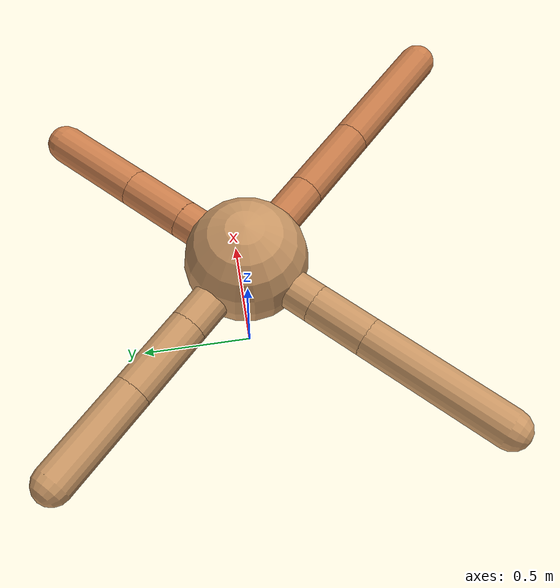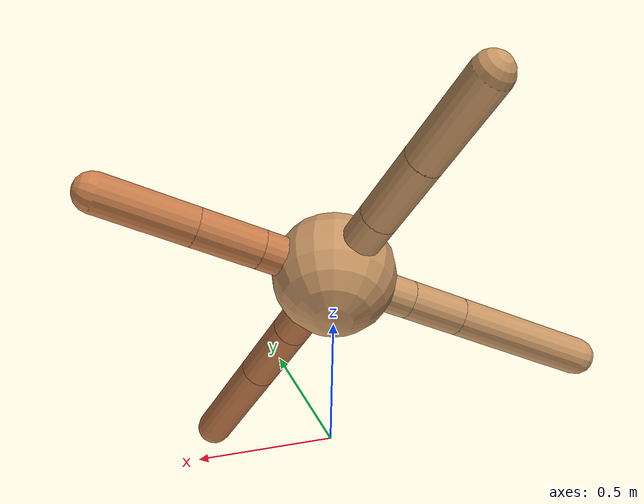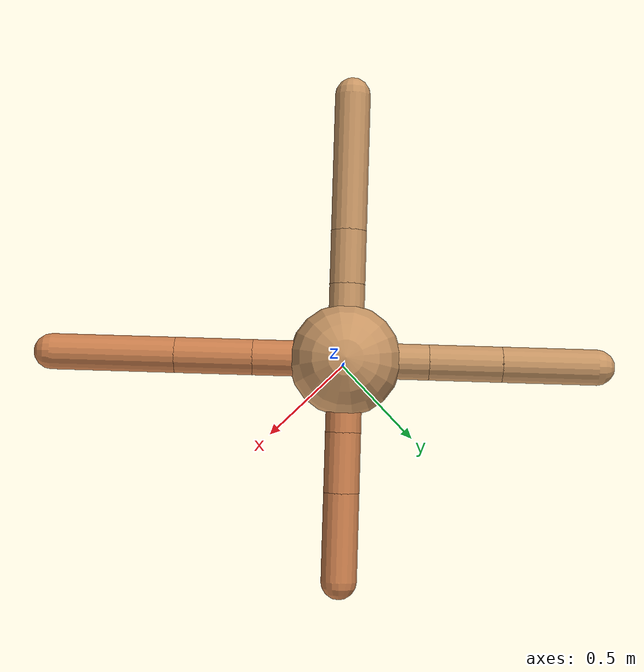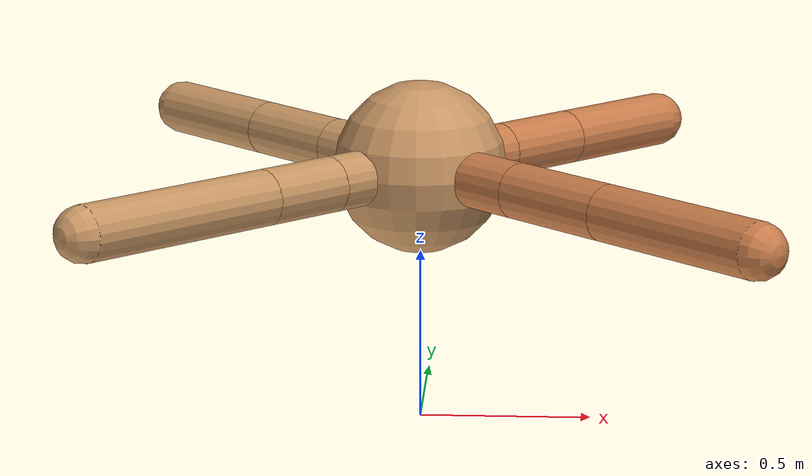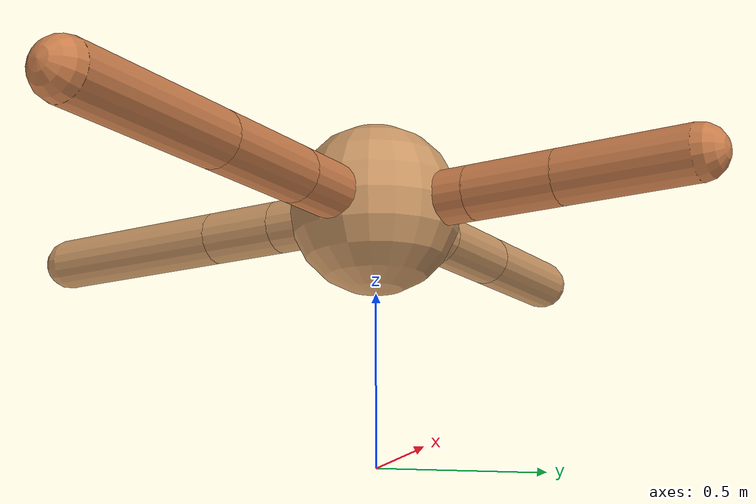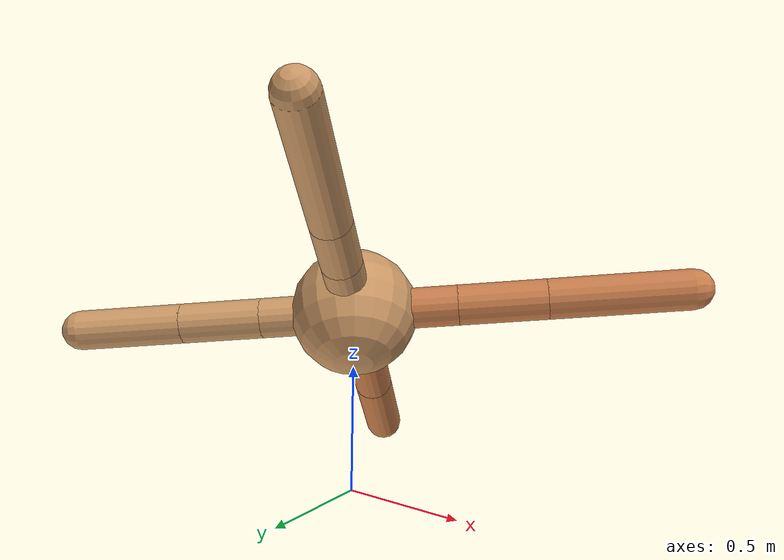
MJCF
<mujoco model="ant">
  <compiler angle="degree" coordinate="local" inertiafromgeom="true" />
  <option integrator="RK4" timestep="0.01" />
  <custom>
    <numeric data="0.0 0.0 0.55 1.0 0.0 0.0 0.0 0.0 1.0 0.0 -1.0 0.0 -1.0 0.0 1.0" name="init_qpos" />
  </custom>
  <default>
    <joint armature="1" damping="1" limited="true" />
    <geom conaffinity="0" condim="3" density="5.0" friction="1.5 0.1 0.1" margin="0.01" rgba="0.8 0.6 0.4 1" />
  </default>
  <worldbody>
    <body name="torso" pos="0 0 0.75">
      <geom name="torso_geom" pos="0 0 0" size="0.25" type="sphere" />

      <body name="front_left_leg" pos="0 0 0">
        <geom fromto="0.0 0.0 0.0 0.2265850155026543 0.2265850155026543 0.0" name="aux_1_geom" size="0.08" type="capsule" rgba=".8 .5 .3 1" />
        <body name="aux_1" pos="0.2265850155026543 0.2265850155026543 0.0">
          <joint axis="0 0 1" name="hip_1" pos="0.0 0.0 0.0" range="-40 40" type="hinge" />
          <geom fromto="0.0 0.0 0.0 0.18868062848589556 0.18868062848589556 0.0" name="left_leg_geom" size="0.08" type="capsule" rgba=".8 .5 .3 1" />
          <body pos="0.18868062848589556 0.18868062848589556 0.0" name="front_left_foot">
            <joint axis="-1 1 0" name="ankle_1" pos="0.0 0.0 0.0" range="30 100" type="hinge" />
            <geom fromto="0.0 0.0 0.0 0.2753645426216335 0.2753645426216335 0.0" name="left_ankle_geom" size="0.08" type="capsule" rgba=".8 .5 .3 1" />
          </body>
        </body>
      </body>
      <body name="front_right_leg" pos="0 0 0">
        <geom fromto="0.0 0.0 0.0 -0.2614089758560551 0.2614089758560551 0.0" name="aux_2_geom" size="0.08" type="capsule" />
        <body name="aux_2" pos="-0.2614089758560551 0.2614089758560551 0.0">
          <joint axis="0 0 1" name="hip_2" pos="0.0 0.0 0.0" range="-40 40" type="hinge" />
          <geom fromto="0.0 0.0 0.0 -0.22975429758483373 0.22975429758483373 0.0" name="right_leg_geom" size="0.08" type="capsule" />
          <body pos="-0.22975429758483373 0.22975429758483373 0.0" name="front_right_foot">
            <joint axis="1 1 0" name="ankle_2" pos="0.0 0.0 0.0" range="-100 -30" type="hinge" />
            <geom fromto="0.0 0.0 0.0 -0.29995816265695024 0.29995816265695024 0.0" name="right_ankle_geom" size="0.08" type="capsule" />
          </body>
        </body>
      </body>
      <body name="left_back_leg" pos="0 0 0">
        <geom fromto="0.0 0.0 0.0 -0.23878201842014796 -0.23878201842014796 0.0" name="aux_3_geom" size="0.08" type="capsule" />
        <body name="aux_3" pos="-0.23878201842014796 -0.23878201842014796 0.0">
          <joint axis="0 0 1" name="hip_3" pos="0.0 0.0 0.0" range="-40 40" type="hinge" />
          <geom fromto="0.0 0.0 0.0 -0.16961409799297178 -0.16961409799297178 0.0" name="back_leg_geom" size="0.08" type="capsule" />
          <body pos="-0.16961409799297178 -0.16961409799297178 0.0" name="left_back_foot">
            <joint axis="-1 1 0" name="ankle_3" pos="0.0 0.0 0.0" range="-100 -30" type="hinge" />
            <geom fromto="0.0 0.0 0.0 -0.434697916701013 -0.434697916701013 0.0" name="third_ankle_geom" size="0.08" type="capsule" />
          </body>
        </body>
      </body>
      <body name="right_back_leg" pos="0 0 0">
        <geom fromto="0.0 0.0 0.0 0.290472401558826 -0.290472401558826 0.0" name="aux_4_geom" size="0.08" type="capsule" rgba=".8 .5 .3 1" />
        <body name="aux_4" pos="0.290472401558826 -0.290472401558826 0.0">
          <joint axis="0 0 1" name="hip_4" pos="0.0 0.0 0.0" range="-40 40" type="hinge" />
          <geom fromto="0.0 0.0 0.0 0.24395090257115426 -0.24395090257115426 0.0" name="rightback_leg_geom" size="0.08" type="capsule" rgba=".8 .5 .3 1" />
          <body pos="0.24395090257115426 -0.24395090257115426 0.0" name="right_back_foot">
            <joint axis="1 1 0" name="ankle_4" pos="0.0 0.0 0.0" range="30 100" type="hinge" />
            <geom fromto="0.0 0.0 0.0 0.38756721003424277 -0.38756721003424277 0.0" name="fourth_ankle_geom" size="0.08" type="capsule" rgba=".8 .5 .3 1" />
          </body>
        </body>
      </body>
    </body>
  </worldbody>
  <actuator>
    <motor ctrllimited="true" ctrlrange="-1.0 1.0" joint="hip_4" gear="150" />
    <motor ctrllimited="true" ctrlrange="-1.0 1.0" joint="ankle_4" gear="150" />
    <motor ctrllimited="true" ctrlrange="-1.0 1.0" joint="hip_1" gear="150" />
    <motor ctrllimited="true" ctrlrange="-1.0 1.0" joint="ankle_1" gear="150" />
    <motor ctrllimited="true" ctrlrange="-1.0 1.0" joint="hip_2" gear="150" />
    <motor ctrllimited="true" ctrlrange="-1.0 1.0" joint="ankle_2" gear="150" />
    <motor ctrllimited="true" ctrlrange="-1.0 1.0" joint="hip_3" gear="150" />
    <motor ctrllimited="true" ctrlrange="-1.0 1.0" joint="ankle_3" gear="150" />
  </actuator>
</mujoco>
